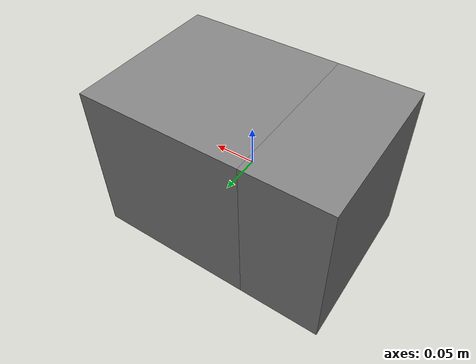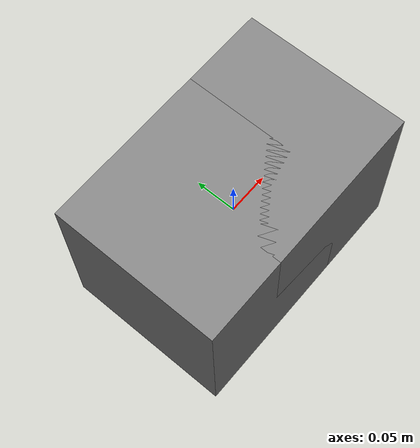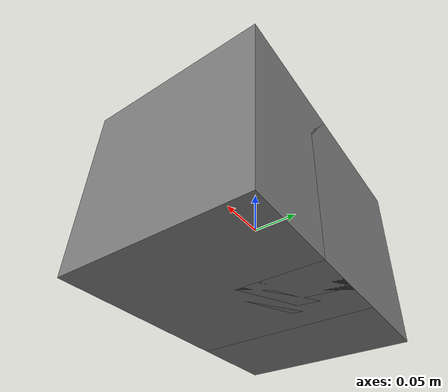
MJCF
<mujoco model="both_init">
  <option gravity="0 0 0" timestep="0.002" sleep_tolerance="0.1">
    <flag sleep="enable"/>
  </option>
  <worldbody>
    <body name="A" pos="-0.05 0 0" sleep="init">
      <freejoint/>
      <geom type="box" size="0.1 0.1 0.1" mass="1.0" margin="0.1"/>
    </body>
    <body name="B" pos="0.05 0 0" sleep="init">
      <freejoint/>
      <geom type="box" size="0.1 0.1 0.1" mass="1.0" margin="0.1"/>
    </body>
  </worldbody>
</mujoco>
